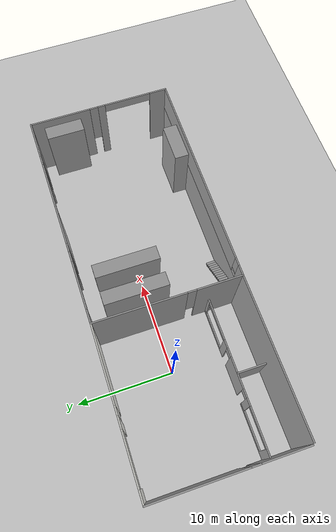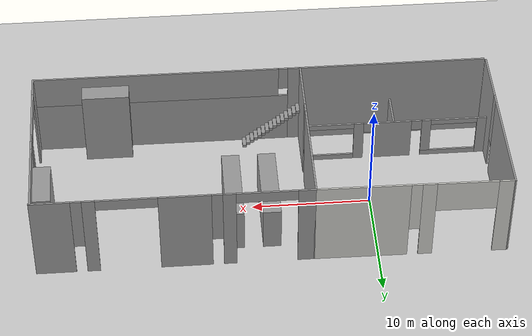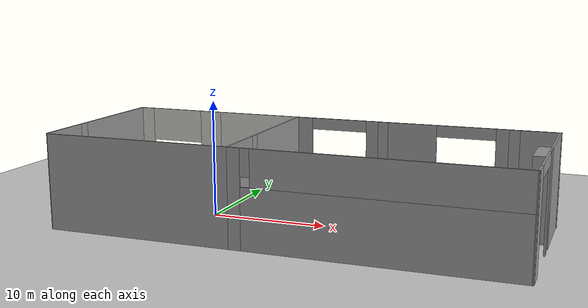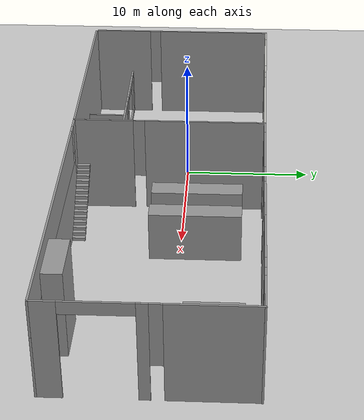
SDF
<sdf version="1.6">
 <world name="default">
  <model name="ground_plane">
   <static>1</static>
   <link name="link">
    <collision name="collision">
     <geometry><plane><normal>0 0 1</normal><size>100 100</size></plane></geometry>
     <surface><friction><ode><mu>100</mu><mu2>50</mu2></ode></friction></surface>
    </collision>
    <visual name="visual">
     <cast_shadows>0</cast_shadows>
     <geometry><plane><normal>0 0 1</normal><size>100 100</size></plane></geometry>
     <material>
      <script><uri>file://media/materials/scripts/gazebo.material</uri><name>Gazebo/Grey</name></script>
     </material>
    </visual>
   </link>
  </model>
  <model name="TD">
   <pose>8.65214 -1.10284 0 0 -0 0</pose>
   <link name="Stairs_4">
    <visual name="Stairs_4_Visual_0">
     <pose>1.53438 -6.89619 0.133333 0 -0 -1.5708</pose>
     <geometry><box><size>1 0.333333 0.266667</size></box></geometry>
     <material>
      <script><uri>file://media/materials/scripts/gazebo.material</uri><name>Gazebo/Grey</name></script>
      <ambient>1 1 1 1</ambient>
     </material>
     <meta><layer>0</layer></meta>
    </visual>
    <collision name="Stairs_4_Collision_0">
     <geometry><box><size>1 0.333333 0.266667</size></box></geometry>
     <pose>1.53438 -6.89619 0.133333 0 -0 -1.5708</pose>
    </collision>
    <visual name="Stairs_4_Visual_1">
     <pose>1.20105 -6.89619 0.4 0 -0 -1.5708</pose>
     <geometry><box><size>1 0.333333 0.266667</size></box></geometry>
     <material>
      <script><uri>file://media/materials/scripts/gazebo.material</uri><name>Gazebo/Grey</name></script>
      <ambient>1 1 1 1</ambient>
     </material>
     <meta><layer>0</layer></meta>
    </visual>
    <collision name="Stairs_4_Collision_1">
     <geometry><box><size>1 0.333333 0.266667</size></box></geometry>
     <pose>1.20105 -6.89619 0.4 0 -0 -1.5708</pose>
    </collision>
    <visual name="Stairs_4_Visual_2">
     <pose>0.867717 -6.89619 0.666667 0 -0 -1.5708</pose>
     <geometry><box><size>1 0.333333 0.266667</size></box></geometry>
     <material>
      <script><uri>file://media/materials/scripts/gazebo.material</uri><name>Gazebo/Grey</name></script>
      <ambient>1 1 1 1</ambient>
     </material>
     <meta><layer>0</layer></meta>
    </visual>
    <collision name="Stairs_4_Collision_2">
     <geometry><box><size>1 0.333333 0.266667</size></box></geometry>
     <pose>0.867717 -6.89619 0.666667 0 -0 -1.5708</pose>
    </collision>
    <visual name="Stairs_4_Visual_3">
     <pose>0.534383 -6.89619 0.933333 0 -0 -1.5708</pose>
     <geometry><box><size>1 0.333333 0.266667</size></box></geometry>
     <material>
      <script><uri>file://media/materials/scripts/gazebo.material</uri><name>Gazebo/Grey</name></script>
      <ambient>1 1 1 1</ambient>
     </material>
     <meta><layer>0</layer></meta>
    </visual>
    <collision name="Stairs_4_Collision_3">
     <geometry><box><size>1 0.333333 0.266667</size></box></geometry>
     <pose>0.534383 -6.89619 0.933333 0 -0 -1.5708</pose>
    </collision>
    <visual name="Stairs_4_Visual_4">
     <pose>0.201051 -6.89619 1.2 0 -0 -1.5708</pose>
     <geometry><box><size>1 0.333333 0.266667</size></box></geometry>
     <material>
      <script><uri>file://media/materials/scripts/gazebo.material</uri><name>Gazebo/Grey</name></script>
      <ambient>1 1 1 1</ambient>
     </material>
     <meta><layer>0</layer></meta>
    </visual>
    <collision name="Stairs_4_Collision_4">
     <geometry><box><size>1 0.333333 0.266667</size></box></geometry>
     <pose>0.201051 -6.89619 1.2 0 -0 -1.5708</pose>
    </collision>
    <visual name="Stairs_4_Visual_5">
     <pose>-0.132283 -6.89619 1.46667 0 -0 -1.5708</pose>
     <geometry><box><size>1 0.333333 0.266667</size></box></geometry>
     <material>
      <script><uri>file://media/materials/scripts/gazebo.material</uri><name>Gazebo/Grey</name></script>
      <ambient>1 1 1 1</ambient>
     </material>
     <meta><layer>0</layer></meta>
    </visual>
    <collision name="Stairs_4_Collision_5">
     <geometry><box><size>1 0.333333 0.266667</size></box></geometry>
     <pose>-0.132283 -6.89619 1.46667 0 -0 -1.5708</pose>
    </collision>
    <visual name="Stairs_4_Visual_6">
     <pose>-0.465617 -6.89619 1.73333 0 -0 -1.5708</pose>
     <geometry><box><size>1 0.333333 0.266667</size></box></geometry>
     <material>
      <script><uri>file://media/materials/scripts/gazebo.material</uri><name>Gazebo/Grey</name></script>
      <ambient>1 1 1 1</ambient>
     </material>
     <meta><layer>0</layer></meta>
    </visual>
    <collision name="Stairs_4_Collision_6">
     <geometry><box><size>1 0.333333 0.266667</size></box></geometry>
     <pose>-0.465617 -6.89619 1.73333 0 -0 -1.5708</pose>
    </collision>
    <visual name="Stairs_4_Visual_7">
     <pose>-0.79895 -6.89619 2 0 -0 -1.5708</pose>
     <geometry><box><size>1 0.333333 0.266667</size></box></geometry>
     <material>
      <script><uri>file://media/materials/scripts/gazebo.material</uri><name>Gazebo/Grey</name></script>
      <ambient>1 1 1 1</ambient>
     </material>
     <meta><layer>0</layer></meta>
    </visual>
    <collision name="Stairs_4_Collision_7">
     <geometry><box><size>1 0.333333 0.266667</size></box></geometry>
     <pose>-0.79895 -6.89619 2 0 -0 -1.5708</pose>
    </collision>
    <visual name="Stairs_4_Visual_8">
     <pose>-1.13228 -6.89619 2.26667 0 -0 -1.5708</pose>
     <geometry><box><size>1 0.333333 0.266667</size></box></geometry>
     <material>
      <script><uri>file://media/materials/scripts/gazebo.material</uri><name>Gazebo/Grey</name></script>
      <ambient>1 1 1 1</ambient>
     </material>
     <meta><layer>0</layer></meta>
    </visual>
    <collision name="Stairs_4_Collision_8">
     <geometry><box><size>1 0.333333 0.266667</size></box></geometry>
     <pose>-1.13228 -6.89619 2.26667 0 -0 -1.5708</pose>
    </collision>
    <visual name="Stairs_4_Visual_9">
     <pose>-1.46562 -6.89619 2.53333 0 -0 -1.5708</pose>
     <geometry><box><size>1 0.333333 0.266667</size></box></geometry>
     <material>
      <script><uri>file://media/materials/scripts/gazebo.material</uri><name>Gazebo/Grey</name></script>
      <ambient>1 1 1 1</ambient>
     </material>
     <meta><layer>0</layer></meta>
    </visual>
    <collision name="Stairs_4_Collision_9">
     <geometry><box><size>1 0.333333 0.266667</size></box></geometry>
     <pose>-1.46562 -6.89619 2.53333 0 -0 -1.5708</pose>
    </collision>
    <visual name="Stairs_4_Visual_10">
     <pose>-1.79895 -6.89619 2.8 0 -0 -1.5708</pose>
     <geometry><box><size>1 0.333333 0.266667</size></box></geometry>
     <material>
      <script><uri>file://media/materials/scripts/gazebo.material</uri><name>Gazebo/Grey</name></script>
      <ambient>1 1 1 1</ambient>
     </material>
     <meta><layer>0</layer></meta>
    </visual>
    <collision name="Stairs_4_Collision_10">
     <geometry><box><size>1 0.333333 0.266667</size></box></geometry>
     <pose>-1.79895 -6.89619 2.8 0 -0 -1.5708</pose>
    </collision>
    <visual name="Stairs_4_Visual_11">
     <pose>-2.13228 -6.89619 3.06667 0 -0 -1.5708</pose>
     <geometry><box><size>1 0.333333 0.266667</size></box></geometry>
     <material>
      <script><uri>file://media/materials/scripts/gazebo.material</uri><name>Gazebo/Grey</name></script>
      <ambient>1 1 1 1</ambient>
     </material>
     <meta><layer>0</layer></meta>
    </visual>
    <collision name="Stairs_4_Collision_11">
     <geometry><box><size>1 0.333333 0.266667</size></box></geometry>
     <pose>-2.13228 -6.89619 3.06667 0 -0 -1.5708</pose>
    </collision>
    <visual name="Stairs_4_Visual_12">
     <pose>-2.46562 -6.89619 3.33333 0 -0 -1.5708</pose>
     <geometry><box><size>1 0.333333 0.266667</size></box></geometry>
     <material>
      <script><uri>file://media/materials/scripts/gazebo.material</uri><name>Gazebo/Grey</name></script>
      <ambient>1 1 1 1</ambient>
     </material>
     <meta><layer>0</layer></meta>
    </visual>
    <collision name="Stairs_4_Collision_12">
     <geometry><box><size>1 0.333333 0.266667</size></box></geometry>
     <pose>-2.46562 -6.89619 3.33333 0 -0 -1.5708</pose>
    </collision>
    <visual name="Stairs_4_Visual_13">
     <pose>-2.79895 -6.89619 3.6 0 -0 -1.5708</pose>
     <geometry><box><size>1 0.333333 0.266667</size></box></geometry>
     <material>
      <script><uri>file://media/materials/scripts/gazebo.material</uri><name>Gazebo/Grey</name></script>
      <ambient>1 1 1 1</ambient>
     </material>
     <meta><layer>0</layer></meta>
    </visual>
    <collision name="Stairs_4_Collision_13">
     <geometry><box><size>1 0.333333 0.266667</size></box></geometry>
     <pose>-2.79895 -6.89619 3.6 0 -0 -1.5708</pose>
    </collision>
    <visual name="Stairs_4_Visual_14">
     <pose>-3.13228 -6.89619 3.86667 0 -0 -1.5708</pose>
     <geometry><box><size>1 0.333333 0.266667</size></box></geometry>
     <material>
      <script><uri>file://media/materials/scripts/gazebo.material</uri><name>Gazebo/Grey</name></script>
      <ambient>1 1 1 1</ambient>
     </material>
     <meta><layer>0</layer></meta>
    </visual>
    <collision name="Stairs_4_Collision_14">
     <geometry><box><size>1 0.333333 0.266667</size></box></geometry>
     <pose>-3.13228 -6.89619 3.86667 0 -0 -1.5708</pose>
    </collision>
   </link>
   <link name="Wall_0">
    <pose>-11.382 7.45126 0 0 0 -0.008729</pose>
    <visual name="Wall_0_Visual_0">
     <pose>-7.40723 0 4 0 -0 0</pose>
     <geometry><box><size>1.37391 0.15 8</size></box></geometry>
     <material>
      <script><uri>file://media/materials/scripts/gazebo.material</uri><name>Gazebo/CeilingTiled</name></script>
      <ambient>1 1 1 1</ambient>
     </material>
     <meta><layer>0</layer></meta>
    </visual>
    <collision name="Wall_0_Collision_0">
     <geometry><box><size>1.37391 0.15 8</size></box></geometry>
     <pose>-7.40723 0 4 0 -0 0</pose>
    </collision>
    <visual name="Wall_0_Visual_1">
     <pose>-1.13343 0 4 0 -0 0</pose>
     <geometry><box><size>1.17368 0.15 8</size></box></geometry>
     <material>
      <script><uri>file://media/materials/scripts/gazebo.material</uri><name>Gazebo/CeilingTiled</name></script>
      <ambient>1 1 1 1</ambient>
     </material>
     <meta><layer>0</layer></meta>
    </visual>
    <collision name="Wall_0_Collision_1">
     <geometry><box><size>1.17368 0.15 8</size></box></geometry>
     <pose>-1.13343 0 4 0 -0 0</pose>
    </collision>
    <visual name="Wall_0_Visual_2">
     <pose>4.22379 0 4 0 -0 0</pose>
     <geometry><box><size>7.74078 0.15 8</size></box></geometry>
     <material>
      <script><uri>file://media/materials/scripts/gazebo.material</uri><name>Gazebo/CeilingTiled</name></script>
      <ambient>1 1 1 1</ambient>
     </material>
     <meta><layer>0</layer></meta>
    </visual>
    <collision name="Wall_0_Collision_2">
     <geometry><box><size>7.74078 0.15 8</size></box></geometry>
     <pose>4.22379 0 4 0 -0 0</pose>
    </collision>
    <visual name="Wall_0_Visual_3">
     <pose>-0.096596 0 5.5 0 -0 0</pose>
     <geometry><box><size>0.9 0.15 5</size></box></geometry>
     <material>
      <script><uri>file://media/materials/scripts/gazebo.material</uri><name>Gazebo/CeilingTiled</name></script>
      <ambient>1 1 1 1</ambient>
     </material>
     <meta><layer>0</layer></meta>
    </visual>
    <collision name="Wall_0_Collision_3">
     <geometry><box><size>0.9 0.15 5</size></box></geometry>
     <pose>-0.096596 0 5.5 0 -0 0</pose>
    </collision>
    <visual name="Wall_0_Visual_4">
     <pose>-4.22027 0 6.5 0 -0 0</pose>
     <geometry><box><size>5 0.15 3</size></box></geometry>
     <material>
      <script><uri>file://media/materials/scripts/gazebo.material</uri><name>Gazebo/CeilingTiled</name></script>
      <ambient>1 1 1 1</ambient>
     </material>
     <meta><layer>0</layer></meta>
    </visual>
    <collision name="Wall_0_Collision_4">
     <geometry><box><size>5 0.15 3</size></box></geometry>
     <pose>-4.22027 0 6.5 0 -0 0</pose>
    </collision>
   </link>
   <link name="Wall_10">
    <pose>-3.363 -0.043236 0 0 0 -1.5708</pose>
    <visual name="Wall_10_Visual_0">
     <pose>-2.78601 0 4 0 -0 0</pose>
     <geometry><box><size>9.42697 0.15 8</size></box></geometry>
     <material>
      <script><uri>file://media/materials/scripts/gazebo.material</uri><name>Gazebo/Grey</name></script>
      <ambient>1 1 1 1</ambient>
     </material>
     <meta><layer>0</layer></meta>
    </visual>
    <collision name="Wall_10_Collision_0">
     <geometry><box><size>9.42697 0.15 8</size></box></geometry>
     <pose>-2.78601 0 4 0 -0 0</pose>
    </collision>
    <visual name="Wall_10_Visual_1">
     <pose>5.16348 0 4 0 -0 0</pose>
     <geometry><box><size>4.67203 0.15 8</size></box></geometry>
     <material>
      <script><uri>file://media/materials/scripts/gazebo.material</uri><name>Gazebo/Grey</name></script>
      <ambient>1 1 1 1</ambient>
     </material>
     <meta><layer>0</layer></meta>
    </visual>
    <collision name="Wall_10_Collision_1">
     <geometry><box><size>4.67203 0.15 8</size></box></geometry>
     <pose>5.16348 0 4 0 -0 0</pose>
    </collision>
    <visual name="Wall_10_Visual_2">
     <pose>2.37747 0 5.5 0 -0 0</pose>
     <geometry><box><size>0.9 0.15 5</size></box></geometry>
     <material>
      <script><uri>file://media/materials/scripts/gazebo.material</uri><name>Gazebo/Grey</name></script>
      <ambient>1 1 1 1</ambient>
     </material>
     <meta><layer>0</layer></meta>
    </visual>
    <collision name="Wall_10_Collision_2">
     <geometry><box><size>0.9 0.15 5</size></box></geometry>
     <pose>2.37747 0 5.5 0 -0 0</pose>
    </collision>
   </link>
   <link name="Wall_13">
    <collision name="Wall_13_Collision">
     <geometry><box><size>16 0.15 8</size></box></geometry>
     <pose>0 0 4 0 -0 0</pose>
    </collision>
    <visual name="Wall_13_Visual">
     <pose>0 0 4 0 -0 0</pose>
     <geometry><box><size>16 0.15 8</size></box></geometry>
     <material>
      <script><uri>file://media/materials/scripts/gazebo.material</uri><name>Gazebo/Grey</name></script>
      <ambient>1 1 1 1</ambient>
     </material>
     <meta><layer>0</layer></meta>
    </visual>
    <pose>-11.288 -7.49124 0 0 0 -3.13863</pose>
   </link>
   <link name="Wall_15">
    <pose>-11.437 -4.40674 0 0 -0 0</pose>
    <visual name="Wall_15_Visual_0">
     <pose>-7.59892 0 2 0 -0 0</pose>
     <geometry><box><size>1.05216 0.15 4</size></box></geometry>
     <material>
      <script><uri>file://media/materials/scripts/gazebo.material</uri><name>Gazebo/Grey</name></script>
      <ambient>1 1 1 1</ambient>
     </material>
     <meta><layer>0</layer></meta>
    </visual>
    <collision name="Wall_15_Collision_0">
     <geometry><box><size>1.05216 0.15 4</size></box></geometry>
     <pose>-7.59892 0 2 0 -0 0</pose>
    </collision>
    <visual name="Wall_15_Visual_1">
     <pose>0.254519 0 2 0 -0 0</pose>
     <geometry><box><size>3.24063 0.15 4</size></box></geometry>
     <material>
      <script><uri>file://media/materials/scripts/gazebo.material</uri><name>Gazebo/Grey</name></script>
      <ambient>1 1 1 1</ambient>
     </material>
     <meta><layer>0</layer></meta>
    </visual>
    <collision name="Wall_15_Collision_1">
     <geometry><box><size>3.24063 0.15 4</size></box></geometry>
     <pose>0.254519 0 2 0 -0 0</pose>
    </collision>
    <visual name="Wall_15_Visual_2">
     <pose>3.20125 0 2 0 -0 0</pose>
     <geometry><box><size>0.852824 0.15 4</size></box></geometry>
     <material>
      <script><uri>file://media/materials/scripts/gazebo.material</uri><name>Gazebo/Grey</name></script>
      <ambient>1 1 1 1</ambient>
     </material>
     <meta><layer>0</layer></meta>
    </visual>
    <collision name="Wall_15_Collision_2">
     <geometry><box><size>0.852824 0.15 4</size></box></geometry>
     <pose>3.20125 0 2 0 -0 0</pose>
    </collision>
    <visual name="Wall_15_Visual_3">
     <pose>-4.66932 0 0.25 0 -0 0</pose>
     <geometry><box><size>4.80705 0.15 0.5</size></box></geometry>
     <material>
      <script><uri>file://media/materials/scripts/gazebo.material</uri><name>Gazebo/Grey</name></script>
      <ambient>1 1 1 1</ambient>
     </material>
     <meta><layer>0</layer></meta>
    </visual>
    <collision name="Wall_15_Collision_3">
     <geometry><box><size>4.80705 0.15 0.5</size></box></geometry>
     <pose>-4.66932 0 0.25 0 -0 0</pose>
    </collision>
    <visual name="Wall_15_Visual_4">
     <pose>5.87633 0 0.25 0 -0 0</pose>
     <geometry><box><size>4.49734 0.15 0.5</size></box></geometry>
     <material>
      <script><uri>file://media/materials/scripts/gazebo.material</uri><name>Gazebo/Grey</name></script>
      <ambient>1 1 1 1</ambient>
     </material>
     <meta><layer>0</layer></meta>
    </visual>
    <collision name="Wall_15_Collision_4">
     <geometry><box><size>4.49734 0.15 0.5</size></box></geometry>
     <pose>5.87633 0 0.25 0 -0 0</pose>
    </collision>
    <visual name="Wall_15_Visual_5">
     <pose>-2.66932 0 2.25 0 -0 0</pose>
     <geometry><box><size>0.807047 0.15 3.5</size></box></geometry>
     <material>
      <script><uri>file://media/materials/scripts/gazebo.material</uri><name>Gazebo/Grey</name></script>
      <ambient>1 1 1 1</ambient>
     </material>
     <meta><layer>0</layer></meta>
    </visual>
    <collision name="Wall_15_Collision_5">
     <geometry><box><size>0.807047 0.15 3.5</size></box></geometry>
     <pose>-2.66932 0 2.25 0 -0 0</pose>
    </collision>
    <visual name="Wall_15_Visual_6">
     <pose>-2.66932 0 2.25 0 -0 0</pose>
     <geometry><box><size>0.807047 0.15 3.5</size></box></geometry>
     <material>
      <script><uri>file://media/materials/scripts/gazebo.material</uri><name>Gazebo/Grey</name></script>
      <ambient>1 1 1 1</ambient>
     </material>
     <meta><layer>0</layer></meta>
    </visual>
    <collision name="Wall_15_Collision_6">
     <geometry><box><size>0.807047 0.15 3.5</size></box></geometry>
     <pose>-2.66932 0 2.25 0 -0 0</pose>
    </collision>
    <visual name="Wall_15_Visual_7">
     <pose>7.87633 0 2.25 0 -0 0</pose>
     <geometry><box><size>0.497343 0.15 3.5</size></box></geometry>
     <material>
      <script><uri>file://media/materials/scripts/gazebo.material</uri><name>Gazebo/Grey</name></script>
      <ambient>1 1 1 1</ambient>
     </material>
     <meta><layer>0</layer></meta>
    </visual>
    <collision name="Wall_15_Collision_7">
     <geometry><box><size>0.497343 0.15 3.5</size></box></geometry>
     <pose>7.87633 0 2.25 0 -0 0</pose>
    </collision>
    <visual name="Wall_15_Visual_8">
     <pose>2.32483 0 3.5 0 -0 0</pose>
     <geometry><box><size>0.9 0.15 1</size></box></geometry>
     <material>
      <script><uri>file://media/materials/scripts/gazebo.material</uri><name>Gazebo/Grey</name></script>
      <ambient>1 1 1 1</ambient>
     </material>
     <meta><layer>0</layer></meta>
    </visual>
    <collision name="Wall_15_Collision_8">
     <geometry><box><size>0.9 0.15 1</size></box></geometry>
     <pose>2.32483 0 3.5 0 -0 0</pose>
    </collision>
    <visual name="Wall_15_Visual_9">
     <pose>-1.8158 0 3.5 0 -0 0</pose>
     <geometry><box><size>0.9 0.15 1</size></box></geometry>
     <material>
      <script><uri>file://media/materials/scripts/gazebo.material</uri><name>Gazebo/Grey</name></script>
      <ambient>1 1 1 1</ambient>
     </material>
     <meta><layer>0</layer></meta>
    </visual>
    <collision name="Wall_15_Collision_9">
     <geometry><box><size>0.9 0.15 1</size></box></geometry>
     <pose>-1.8158 0 3.5 0 -0 0</pose>
    </collision>
    <visual name="Wall_15_Visual_10">
     <pose>-1.8158 0 3.5 0 -0 0</pose>
     <geometry><box><size>0.9 0.15 1</size></box></geometry>
     <material>
      <script><uri>file://media/materials/scripts/gazebo.material</uri><name>Gazebo/Grey</name></script>
      <ambient>1 1 1 1</ambient>
     </material>
     <meta><layer>0</layer></meta>
    </visual>
    <collision name="Wall_15_Collision_10">
     <geometry><box><size>0.9 0.15 1</size></box></geometry>
     <pose>-1.8158 0 3.5 0 -0 0</pose>
    </collision>
    <visual name="Wall_15_Visual_11">
     <pose>-5.07284 0 3.75 0 -0 0</pose>
     <geometry><box><size>4 0.15 0.5</size></box></geometry>
     <material>
      <script><uri>file://media/materials/scripts/gazebo.material</uri><name>Gazebo/Grey</name></script>
      <ambient>1 1 1 1</ambient>
     </material>
     <meta><layer>0</layer></meta>
    </visual>
    <collision name="Wall_15_Collision_11">
     <geometry><box><size>4 0.15 0.5</size></box></geometry>
     <pose>-5.07284 0 3.75 0 -0 0</pose>
    </collision>
    <visual name="Wall_15_Visual_12">
     <pose>5.62766 0 3.75 0 -0 0</pose>
     <geometry><box><size>4 0.15 0.5</size></box></geometry>
     <material>
      <script><uri>file://media/materials/scripts/gazebo.material</uri><name>Gazebo/Grey</name></script>
      <ambient>1 1 1 1</ambient>
     </material>
     <meta><layer>0</layer></meta>
    </visual>
    <collision name="Wall_15_Collision_12">
     <geometry><box><size>4 0.15 0.5</size></box></geometry>
     <pose>5.62766 0 3.75 0 -0 0</pose>
    </collision>
   </link>
   <link name="Wall_17">
    <collision name="Wall_17_Collision">
     <geometry><box><size>3 0.15 4</size></box></geometry>
     <pose>0 0 2 0 -0 0</pose>
    </collision>
    <visual name="Wall_17_Visual">
     <pose>0 0 2 0 -0 0</pose>
     <geometry><box><size>3 0.15 4</size></box></geometry>
     <material>
      <script><uri>file://media/materials/scripts/gazebo.material</uri><name>Gazebo/Grey</name></script>
      <ambient>1 1 1 1</ambient>
     </material>
     <meta><layer>0</layer></meta>
    </visual>
    <pose>-11.253 -5.87874 0 0 0 -1.5708</pose>
   </link>
   <link name="Wall_19">
    <pose>8.062 7.38126 0 0 -0 0</pose>
    <visual name="Wall_19_Visual_0">
     <pose>-10.7556 0 4 0 -0 0</pose>
     <geometry><box><size>1.48881 0.15 8</size></box></geometry>
     <material>
      <script><uri>file://media/materials/scripts/gazebo.material</uri><name>Gazebo/Grey</name></script>
      <ambient>1 1 1 1</ambient>
     </material>
     <meta><layer>0</layer></meta>
    </visual>
    <collision name="Wall_19_Collision_0">
     <geometry><box><size>1.48881 0.15 8</size></box></geometry>
     <pose>-10.7556 0 4 0 -0 0</pose>
    </collision>
    <visual name="Wall_19_Visual_1">
     <pose>-4.47985 0 4 0 -0 0</pose>
     <geometry><box><size>1.06269 0.15 8</size></box></geometry>
     <material>
      <script><uri>file://media/materials/scripts/gazebo.material</uri><name>Gazebo/Grey</name></script>
      <ambient>1 1 1 1</ambient>
     </material>
     <meta><layer>0</layer></meta>
    </visual>
    <collision name="Wall_19_Collision_1">
     <geometry><box><size>1.06269 0.15 8</size></box></geometry>
     <pose>-4.47985 0 4 0 -0 0</pose>
    </collision>
    <visual name="Wall_19_Visual_2">
     <pose>-0.912084 0 4 0 -0 0</pose>
     <geometry><box><size>4.27284 0.15 8</size></box></geometry>
     <material>
      <script><uri>file://media/materials/scripts/gazebo.material</uri><name>Gazebo/Grey</name></script>
      <ambient>1 1 1 1</ambient>
     </material>
     <meta><layer>0</layer></meta>
    </visual>
    <collision name="Wall_19_Collision_2">
     <geometry><box><size>4.27284 0.15 8</size></box></geometry>
     <pose>-0.912084 0 4 0 -0 0</pose>
    </collision>
    <visual name="Wall_19_Visual_3">
     <pose>6.75568 0 4 0 -0 0</pose>
     <geometry><box><size>1.06269 0.15 8</size></box></geometry>
     <material>
      <script><uri>file://media/materials/scripts/gazebo.material</uri><name>Gazebo/Grey</name></script>
      <ambient>1 1 1 1</ambient>
     </material>
     <meta><layer>0</layer></meta>
    </visual>
    <collision name="Wall_19_Collision_3">
     <geometry><box><size>1.06269 0.15 8</size></box></geometry>
     <pose>6.75568 0 4 0 -0 0</pose>
    </collision>
    <visual name="Wall_19_Visual_4">
     <pose>9.84351 0 4 0 -0 0</pose>
     <geometry><box><size>3.31298 0.15 8</size></box></geometry>
     <material>
      <script><uri>file://media/materials/scripts/gazebo.material</uri><name>Gazebo/Grey</name></script>
      <ambient>1 1 1 1</ambient>
     </material>
     <meta><layer>0</layer></meta>
    </visual>
    <collision name="Wall_19_Collision_4">
     <geometry><box><size>3.31298 0.15 8</size></box></geometry>
     <pose>9.84351 0 4 0 -0 0</pose>
    </collision>
    <visual name="Wall_19_Visual_5">
     <pose>-3.4985 0 5.5 0 -0 0</pose>
     <geometry><box><size>0.9 0.15 5</size></box></geometry>
     <material>
      <script><uri>file://media/materials/scripts/gazebo.material</uri><name>Gazebo/Grey</name></script>
      <ambient>1 1 1 1</ambient>
     </material>
     <meta><layer>0</layer></meta>
    </visual>
    <collision name="Wall_19_Collision_5">
     <geometry><box><size>0.9 0.15 5</size></box></geometry>
     <pose>-3.4985 0 5.5 0 -0 0</pose>
    </collision>
    <visual name="Wall_19_Visual_6">
     <pose>7.73702 0 5.5 0 -0 0</pose>
     <geometry><box><size>0.9 0.15 5</size></box></geometry>
     <material>
      <script><uri>file://media/materials/scripts/gazebo.material</uri><name>Gazebo/Grey</name></script>
      <ambient>1 1 1 1</ambient>
     </material>
     <meta><layer>0</layer></meta>
    </visual>
    <collision name="Wall_19_Collision_6">
     <geometry><box><size>0.9 0.15 5</size></box></geometry>
     <pose>7.73702 0 5.5 0 -0 0</pose>
    </collision>
    <visual name="Wall_19_Visual_7">
     <pose>-7.51119 0 7.5 0 -0 0</pose>
     <geometry><box><size>5 0.15 1</size></box></geometry>
     <material>
      <script><uri>file://media/materials/scripts/gazebo.material</uri><name>Gazebo/Grey</name></script>
      <ambient>1 1 1 1</ambient>
     </material>
     <meta><layer>0</layer></meta>
    </visual>
    <collision name="Wall_19_Collision_7">
     <geometry><box><size>5 0.15 1</size></box></geometry>
     <pose>-7.51119 0 7.5 0 -0 0</pose>
    </collision>
    <visual name="Wall_19_Visual_8">
     <pose>3.72433 0 7.5 0 -0 0</pose>
     <geometry><box><size>5 0.15 1</size></box></geometry>
     <material>
      <script><uri>file://media/materials/scripts/gazebo.material</uri><name>Gazebo/Grey</name></script>
      <ambient>1 1 1 1</ambient>
     </material>
     <meta><layer>0</layer></meta>
    </visual>
    <collision name="Wall_19_Collision_8">
     <geometry><box><size>5 0.15 1</size></box></geometry>
     <pose>3.72433 0 7.5 0 -0 0</pose>
    </collision>
   </link>
   <link name="Wall_21">
    <pose>8.035 -7.49474 0 0 0 -0.002369</pose>
    <visual name="Wall_21_Visual_0">
     <pose>-10.9086 0 4 0 -0 0</pose>
     <geometry><box><size>1.12989 0.15 8</size></box></geometry>
     <material>
      <script><uri>file://media/materials/scripts/gazebo.material</uri><name>Gazebo/Grey</name></script>
      <ambient>1 1 1 1</ambient>
     </material>
     <meta><layer>0</layer></meta>
    </visual>
    <collision name="Wall_21_Collision_0">
     <geometry><box><size>1.12989 0.15 8</size></box></geometry>
     <pose>-10.9086 0 4 0 -0 0</pose>
    </collision>
    <visual name="Wall_21_Visual_1">
     <pose>0.564943 0 2.5 0 -0 0</pose>
     <geometry><box><size>21.8172 0.15 5</size></box></geometry>
     <material>
      <script><uri>file://media/materials/scripts/gazebo.material</uri><name>Gazebo/Grey</name></script>
      <ambient>1 1 1 1</ambient>
     </material>
     <meta><layer>0</layer></meta>
    </visual>
    <collision name="Wall_21_Collision_1">
     <geometry><box><size>21.8172 0.15 5</size></box></geometry>
     <pose>0.564943 0 2.5 0 -0 0</pose>
    </collision>
    <visual name="Wall_21_Visual_2">
     <pose>0.964943 0 6.5 0 -0 0</pose>
     <geometry><box><size>21.0172 0.15 3</size></box></geometry>
     <material>
      <script><uri>file://media/materials/scripts/gazebo.material</uri><name>Gazebo/Grey</name></script>
      <ambient>1 1 1 1</ambient>
     </material>
     <meta><layer>0</layer></meta>
    </visual>
    <collision name="Wall_21_Collision_2">
     <geometry><box><size>21.0172 0.15 3</size></box></geometry>
     <pose>0.964943 0 6.5 0 -0 0</pose>
    </collision>
    <visual name="Wall_21_Visual_3">
     <pose>-9.94365 0 6.9 0 -0 0</pose>
     <geometry><box><size>0.8 0.15 2.2</size></box></geometry>
     <material>
      <script><uri>file://media/materials/scripts/gazebo.material</uri><name>Gazebo/Grey</name></script>
      <ambient>1 1 1 1</ambient>
     </material>
     <meta><layer>0</layer></meta>
    </visual>
    <collision name="Wall_21_Collision_3">
     <geometry><box><size>0.8 0.15 2.2</size></box></geometry>
     <pose>-9.94365 0 6.9 0 -0 0</pose>
    </collision>
   </link>
   <link name="Wall_55">
    <pose>19.433 -0.096736 0 0 -0 1.5708</pose>
    <visual name="Wall_55_Visual_0">
     <pose>-6.56325 0 4 0 -0 0</pose>
     <geometry><box><size>1.87349 0.15 8</size></box></geometry>
     <material>
      <script><uri>file://media/materials/scripts/gazebo.material</uri><name>Gazebo/Grey</name></script>
      <ambient>1 1 1 1</ambient>
     </material>
     <meta><layer>0</layer></meta>
    </visual>
    <collision name="Wall_55_Collision_0">
     <geometry><box><size>1.87349 0.15 8</size></box></geometry>
     <pose>-6.56325 0 4 0 -0 0</pose>
    </collision>
    <visual name="Wall_55_Visual_1">
     <pose>-0.22892 0 4 0 -0 0</pose>
     <geometry><box><size>0.795175 0.15 8</size></box></geometry>
     <material>
      <script><uri>file://media/materials/scripts/gazebo.material</uri><name>Gazebo/Grey</name></script>
      <ambient>1 1 1 1</ambient>
     </material>
     <meta><layer>0</layer></meta>
    </visual>
    <collision name="Wall_55_Collision_1">
     <geometry><box><size>0.795175 0.15 8</size></box></geometry>
     <pose>-0.22892 0 4 0 -0 0</pose>
    </collision>
    <visual name="Wall_55_Visual_2">
     <pose>4.28433 0 4 0 -0 0</pose>
     <geometry><box><size>6.43133 0.15 8</size></box></geometry>
     <material>
      <script><uri>file://media/materials/scripts/gazebo.material</uri><name>Gazebo/Grey</name></script>
      <ambient>1 1 1 1</ambient>
     </material>
     <meta><layer>0</layer></meta>
    </visual>
    <collision name="Wall_55_Collision_2">
     <geometry><box><size>6.43133 0.15 8</size></box></geometry>
     <pose>4.28433 0 4 0 -0 0</pose>
    </collision>
    <visual name="Wall_55_Visual_3">
     <pose>0.618668 0 5.5 0 -0 0</pose>
     <geometry><box><size>0.9 0.15 5</size></box></geometry>
     <material>
      <script><uri>file://media/materials/scripts/gazebo.material</uri><name>Gazebo/Grey</name></script>
      <ambient>1 1 1 1</ambient>
     </material>
     <meta><layer>0</layer></meta>
    </visual>
    <collision name="Wall_55_Collision_3">
     <geometry><box><size>0.9 0.15 5</size></box></geometry>
     <pose>0.618668 0 5.5 0 -0 0</pose>
    </collision>
    <visual name="Wall_55_Visual_4">
     <pose>-3.12651 0 7.5 0 -0 0</pose>
     <geometry><box><size>5 0.15 1</size></box></geometry>
     <material>
      <script><uri>file://media/materials/scripts/gazebo.material</uri><name>Gazebo/Grey</name></script>
      <ambient>1 1 1 1</ambient>
     </material>
     <meta><layer>0</layer></meta>
    </visual>
    <collision name="Wall_55_Collision_4">
     <geometry><box><size>5 0.15 1</size></box></geometry>
     <pose>-3.12651 0 7.5 0 -0 0</pose>
    </collision>
   </link>
   <link name="Wall_57">
    <collision name="Wall_57_Collision">
     <geometry><box><size>7 1.5 4</size></box></geometry>
     <pose>0 0 2 0 -0 0</pose>
    </collision>
    <visual name="Wall_57_Visual">
     <pose>0 0 2 0 -0 0</pose>
     <geometry><box><size>7 1.5 4</size></box></geometry>
     <material>
      <script><uri>file://media/materials/scripts/gazebo.material</uri><name>Gazebo/Grey</name></script>
      <ambient>1 1 1 1</ambient>
     </material>
     <meta><layer>0</layer></meta>
    </visual>
    <pose>0.015483 2.25582 0 0 -0 1.5708</pose>
   </link>
   <link name="Wall_60">
    <collision name="Wall_60_Collision">
     <geometry><box><size>7 1.5 4</size></box></geometry>
     <pose>0 0 2 0 -0 0</pose>
    </collision>
    <visual name="Wall_60_Visual">
     <pose>0 0 2 0 -0 0</pose>
     <geometry><box><size>7 1.5 4</size></box></geometry>
     <material>
      <script><uri>file://media/materials/scripts/gazebo.material</uri><name>Gazebo/Grey</name></script>
      <ambient>1 1 1 1</ambient>
     </material>
     <meta><layer>0</layer></meta>
    </visual>
    <pose>3.06551 2.2558 0 0 -0 1.5708</pose>
   </link>
   <link name="Wall_62">
    <collision name="Wall_62_Collision">
     <geometry><box><size>4 1.5 7</size></box></geometry>
     <pose>0 0 3.5 0 -0 0</pose>
    </collision>
    <visual name="Wall_62_Visual">
     <pose>0 0 3.5 0 -0 0</pose>
     <geometry><box><size>4 1.5 7</size></box></geometry>
     <material>
      <script><uri>file://media/materials/scripts/gazebo.material</uri><name>Gazebo/Grey</name></script>
      <ambient>1 1 1 1</ambient>
     </material>
     <meta><layer>0</layer></meta>
    </visual>
    <pose>18.635 4.12585 0 0 -0 1.5708</pose>
   </link>
   <link name="Wall_64">
    <collision name="Wall_64_Collision">
     <geometry><box><size>4 1.5 7</size></box></geometry>
     <pose>0 0 3.5 0 -0 0</pose>
    </collision>
    <visual name="Wall_64_Visual">
     <pose>0 0 3.5 0 -0 0</pose>
     <geometry><box><size>4 1.5 7</size></box></geometry>
     <material>
      <script><uri>file://media/materials/scripts/gazebo.material</uri><name>Gazebo/Grey</name></script>
      <ambient>1 1 1 1</ambient>
     </material>
     <meta><layer>0</layer></meta>
    </visual>
    <pose>13.3573 -6.6474 0 0 -0 0</pose>
   </link>
   <link name="Wall_8">
    <pose>-19.401 0.096264 0 0 0 -1.5708</pose>
    <visual name="Wall_8_Visual_0">
     <pose>-2.79355 0 4 0 -0 0</pose>
     <geometry><box><size>9.4129 0.15 8</size></box></geometry>
     <material>
      <script><uri>file://media/materials/scripts/gazebo.material</uri><name>Gazebo/Grey</name></script>
      <ambient>1 1 1 1</ambient>
     </material>
     <meta><layer>0</layer></meta>
    </visual>
    <collision name="Wall_8_Collision_0">
     <geometry><box><size>9.4129 0.15 8</size></box></geometry>
     <pose>-2.79355 0 4 0 -0 0</pose>
    </collision>
    <visual name="Wall_8_Visual_1">
     <pose>5.15645 0 4 0 -0 0</pose>
     <geometry><box><size>4.6871 0.15 8</size></box></geometry>
     <material>
      <script><uri>file://media/materials/scripts/gazebo.material</uri><name>Gazebo/Grey</name></script>
      <ambient>1 1 1 1</ambient>
     </material>
     <meta><layer>0</layer></meta>
    </visual>
    <collision name="Wall_8_Collision_1">
     <geometry><box><size>4.6871 0.15 8</size></box></geometry>
     <pose>5.15645 0 4 0 -0 0</pose>
    </collision>
    <visual name="Wall_8_Visual_2">
     <pose>2.36289 0 5.5 0 -0 0</pose>
     <geometry><box><size>0.9 0.15 5</size></box></geometry>
     <material>
      <script><uri>file://media/materials/scripts/gazebo.material</uri><name>Gazebo/Grey</name></script>
      <ambient>1 1 1 1</ambient>
     </material>
     <meta><layer>0</layer></meta>
    </visual>
    <collision name="Wall_8_Collision_2">
     <geometry><box><size>0.9 0.15 5</size></box></geometry>
     <pose>2.36289 0 5.5 0 -0 0</pose>
    </collision>
   </link>
   <static>1</static>
  </model>
 </world>
</sdf>
